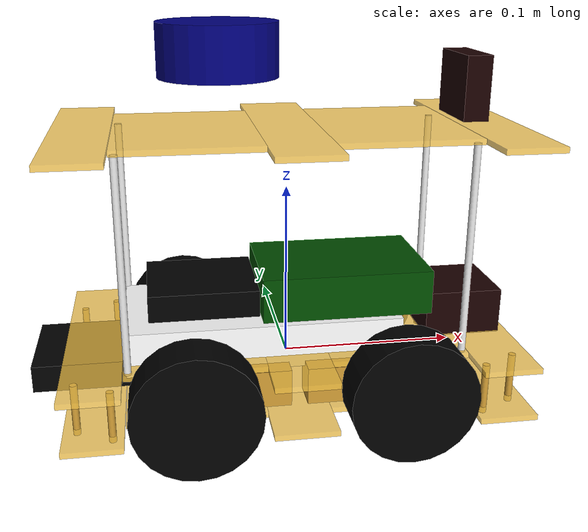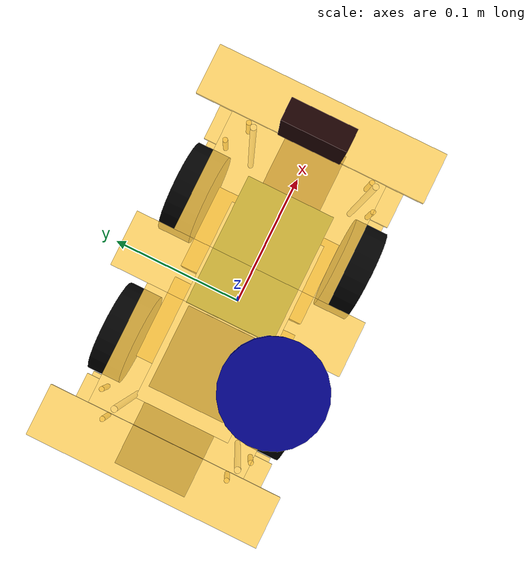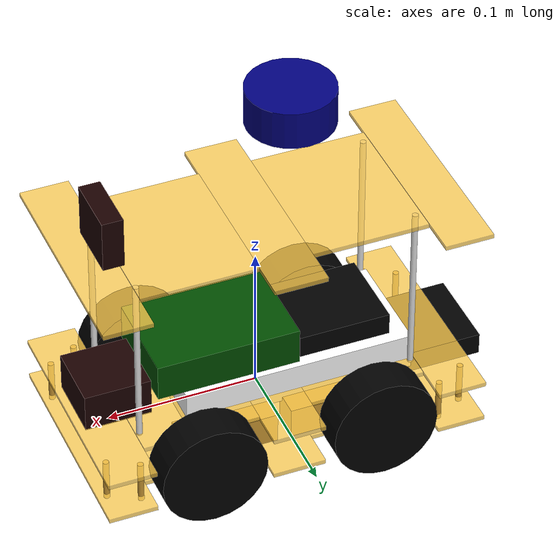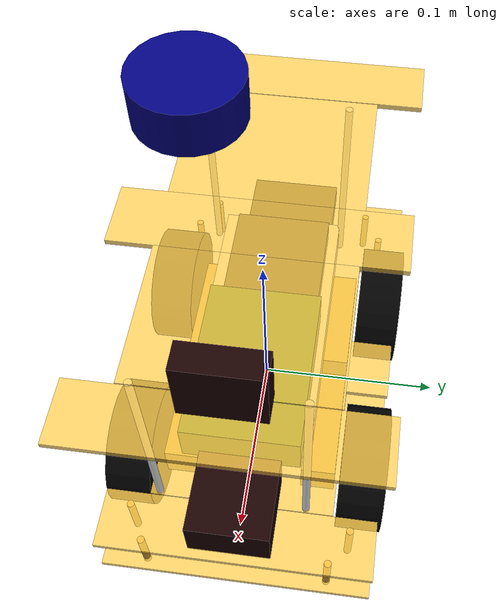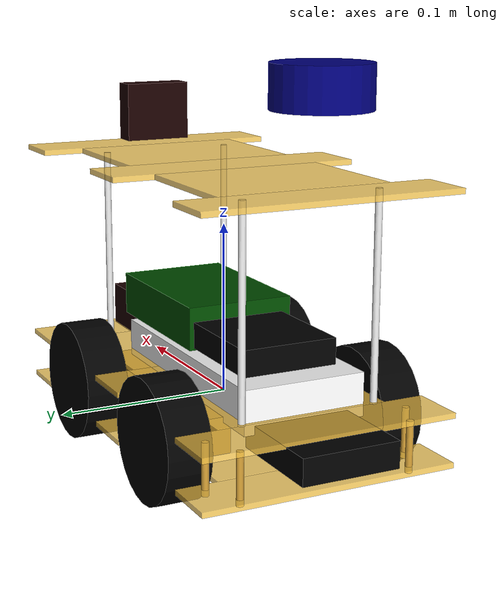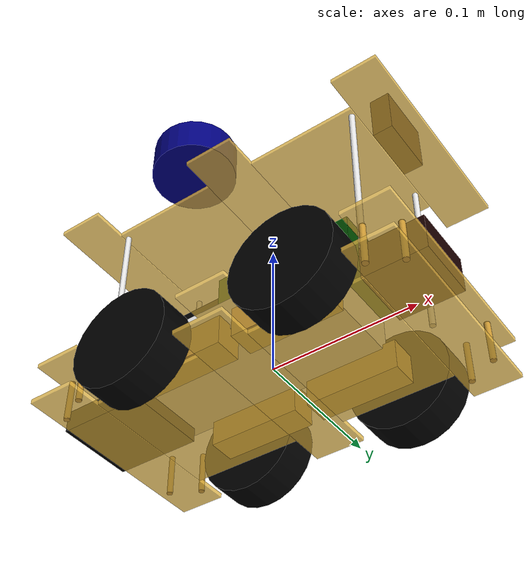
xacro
<?xml version="1.0"?>
<robot xmlns:xacro="http://www.ros.org/wiki/xacro" name="robot">
    <xacro:include filename="robot_core.xacro" />
    <xacro:include filename="wheels.xacro" />
    <xacro:include filename="lidar.xacro" />
    <xacro:include filename="camera.xacro" />
    <xacro:include filename="others.xacro" />
    <xacro:include filename="gazebo.xacro" />
</robot>

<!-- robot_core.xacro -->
<robot xmlns:xacro="http://www.ros.org/wiki/xacro" name="robot">

    <xacro:include filename="inertial_macros.xacro" />

    <material name="NavyBlue">
        <color rgba="0.0 0.0 0.5 1.0" />
    </material>

    <material name="WoodYellow">
        <color rgba="1.0 0.8 0.3 0.8" />
    </material>

    <material name="BlackWheel">
        <color rgba="0.0 0.0 0.0 1.0" />
    </material>

    <material name="Red">
        <color rgba="0.1 0.0 0.0 1.0" />
    </material>

    <material name="White">
        <color rgba="0.9 0.9 0.9 1.0" />
    </material>

    <material name="AbsWhite">
        <color rgba="1 1 1 1.0" />
    </material>

    <material name="Grey">
        <color rgba="0.7 0.7 0.7 1.0" />
    </material>

    <material name="DarkGold">
        <color rgba="0.8 0.6 0.2 1.0" />
    </material>
    <material name="DarkGreen">
        <color rgba="0.0 0.3 0.0 1.0" />
    </material>

    <link name="base_link"></link>
    <joint name="odom_to_base" type="fixed">
        <parent link="odom" />
        <child link="base_link" />
        <origin xyz="0 0 0" rpy="0 0 0" />
    </joint>

    <link name="odom" />

    <!-- |                                    Chassis                                      | -->

    <!-- Chassis Macro !-->
    <xacro:macro name="chassis" params="postfix">
        <link name="chassis_${postfix}">
            <visual>
                <geometry>
                    <box size="0.032 0.148 0.003" />
                </geometry>
                <origin xyz="-0.111 0 -0.015" rpy="0.0 0.0 0.0" />
                <material name="WoodYellow" />
            </visual>
            <visual>
                <geometry>
                    <box size="0.077 0.1 0.003" />
                </geometry>
                <origin xyz="-0.056 0 -0.015" rpy="0.0 0.0 0.0" />
                <material name="WoodYellow" />
            </visual>
            <visual>
                <geometry>
                    <box size="0.035 0.148 0.003" />
                </geometry>
                <origin xyz="0 0 -0.015" rpy="0.0 0.0 0.0" />
                <material name="WoodYellow" />
            </visual>
            <visual>
                <geometry>
                    <box size="0.077 0.1 0.003" />
                </geometry>
                <origin xyz="0.056 0 -0.015" rpy="0.0 0.0 0.0" />
                <material name="WoodYellow" />
            </visual>
            <visual>
                <geometry>
                    <box size="0.032 0.148 0.003" />
                </geometry>
                <origin xyz="0.111 0 -0.015" rpy="0.0 0.0 0.0" />
                <material name="WoodYellow" />
            </visual>

            <collision>
                <geometry>
                    <box size="0.032 0.148 0.003" />
                </geometry>
                <origin xyz="-0.111 0 -0.015" rpy="0.0 0.0 0.0" />
            </collision>

            <collision>
                <geometry>
                    <box size="0.077 0.1 0.003" />
                </geometry>
                <origin xyz="-0.056 0 -0.015" rpy="0.0 0.0 0.0" />
            </collision>

            <collision>
                <geometry>
                    <box size="0.035 0.148 0.003" />
                </geometry>
                <origin xyz="0 0 0.02" rpy="0.0 0.0 0.0" />
            </collision>

            <collision>
                <geometry>
                    <box size="0.077 0.1 0.003" />
                </geometry>
                <origin xyz="0.056 0 -0.015" rpy="0.0 0.0 0.0" />
            </collision>

            <collision>
                <geometry>
                    <box size="0.032 0.148 0.003" />
                </geometry>
                <origin xyz="0.111 0 -0.015" rpy="0.0 0.0 0.0" />
            </collision>

            <xacro:inertial_box mass="0.064" x="0.25" y="0.148" z="0.003">
                <origin xyz="0 0 0.04" rpy="0 0 0" />
            </xacro:inertial_box>
        </link>
    </xacro:macro>

    <!-- Chassis bottom !-->
    <xacro:chassis postfix="bottom" />
    <!-- Chassis mid !-->
    <xacro:chassis postfix="mid" />
    <!-- Chassis top !-->
    <xacro:chassis postfix="top" />

    <!-- Chassis bottom !-->
    <joint name="chassis_bottom_joint" type="fixed">
        <parent link="base_link" />
        <child link="chassis_bottom" />
        <origin xyz="0 0 0" />
    </joint>

    <!-- Chassis mid !-->
    <joint name="chassis_mid_joint" type="fixed">
        <parent link="base_link" />
        <child link="chassis_mid" />
        <origin xyz="0.0 0.0 0.028" />
    </joint>

    <!-- Chassis top !-->
    <joint name="chassis_top_joint" type="fixed">
        <parent link="base_link" />
        <child link="chassis_top" />
        <origin xyz="0.00 0.00 0.148" />
    </joint>

</robot>

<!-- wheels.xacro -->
<robot xmlns:xacro="http://www.ros.org/wiki/xacro" name="robot">
    <!-- |                                     Wheels                                      | -->

    <!-- Left Front Wheel Joint!-->
    <joint name="left_front_wheel_joint" type="continuous">
        <parent link="base_link" />
        <child link="left_front_wheel" />
        <origin xyz="0.0575 0.0640 0" rpy="${-pi/2} 0.0 0.0" />
        <axis xyz="0 0 1" />
    </joint>

    <!-- Left Front Wheel !-->
    <link name="left_front_wheel">
        <visual>
            <geometry>
                <cylinder radius="0.035" length="0.025" />
            </geometry>
            <origin xyz="0.0 0.0 0.0" rpy="0 0 0" />
            <material name="BlackWheel" />
        </visual>
        <collision>
            <geometry>
                <sphere radius="0.0325" />
            </geometry>
        </collision>
        <xacro:inertial_cylinder mass="0.027" length="0.025" radius="0.035">
            <origin xyz="0.0 0.0 0.0" rpy="0 0 0" />
        </xacro:inertial_cylinder>
    </link>

    <!-- Right Front Wheel Joint!-->
    <joint name="right_front_wheel_joint" type="continuous">
        <parent link="base_link" />
        <child link="right_front_wheel" />
        <origin xyz="0.0575 -0.0640 0" rpy="${pi/2} 0.0 0.0" />
        <axis xyz="0 0 -1" />
    </joint>

    <!-- Right Front Wheel !-->
    <link name="right_front_wheel">
        <visual>
            <geometry>
                <cylinder radius="0.035" length="0.025" />
            </geometry>
            <origin xyz="0.0 0.0 0.0" rpy="0 0 0" />
            <material name="BlackWheel" />
        </visual>
        <collision>
            <geometry>
                <sphere radius="0.0325" />
            </geometry>
        </collision>
        <xacro:inertial_cylinder mass="0.027" length="0.025" radius="0.035">
            <origin xyz="0.0 0.0 0.0" rpy="0 0 0" />
        </xacro:inertial_cylinder>
    </link>

    <!-- Left Rear Wheel Joint!-->
    <joint name="left_rear_wheel_joint" type="continuous">
        <parent link="base_link" />
        <child link="left_rear_wheel" />
        <origin xyz="-0.0575 0.0640 0" rpy="-${pi/2} 0.0 0.0" />
        <axis xyz="0 0 1" />
    </joint>

    <!-- Left Rear Wheel !-->
    <link name="left_rear_wheel">
        <visual>
            <geometry>
                <cylinder radius="0.035" length="0.025" />
            </geometry>
            <origin xyz="0.0 0.0 0.0" rpy="0 0 0" />
            <material name="BlackWheel" />
        </visual>
        <collision>
            <geometry>
                <sphere radius="0.0325" />
            </geometry>
        </collision>
        <xacro:inertial_cylinder mass="0.027" length="0.025" radius="0.035">
            <origin xyz="0.0 0.0 0.0" rpy="0 0 0" />
        </xacro:inertial_cylinder>
    </link>

    <!-- Right Rear Wheel Joint!-->
    <joint name="right_rear_wheel_joint" type="continuous">
        <parent link="base_link" />
        <child link="right_rear_wheel" />
        <origin xyz="-0.0575 -0.0640 0" rpy="${pi/2} 0.0 0.0" />
        <axis xyz="0 0 -1" />
    </joint>

    <!-- Right Rear Wheel !-->
    <link name="right_rear_wheel">
        <visual>
            <geometry>
                <cylinder radius="0.035" length="0.025" />
            </geometry>
            <origin xyz="0.0 0.0 0.0" rpy="0 0 0" />
            <material name="BlackWheel" />
        </visual>
        <collision>
            <geometry>
                <sphere radius="0.0325" />
            </geometry>
        </collision>
        <xacro:inertial_cylinder mass="0.027" length="0.025" radius="0.035">
            <origin xyz="0.0 0.0 0.0" rpy="0 0 0" />
        </xacro:inertial_cylinder>
    </link>

</robot>

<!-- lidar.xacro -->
<robot xmlns:xacro="http://www.ros.org/wiki/xacro" name="robot">

    <!-- |                                    Lidar                                        | -->
    <!-- Lidar !-->
    <link name="lidar">
        <visual>
            <geometry>
                <cylinder radius="0.0295" length="0.026" />
            </geometry>
            <origin xyz="0.0 0.0 0.0" rpy="0.0 0.0 0.0" />
            <material name="NavyBlue" />
        </visual>
        <collision>
            <geometry>
                <cylinder radius="0.0295" length="0.026" />
            </geometry>
        </collision>
        <xacro:inertial_cylinder mass="0.148" length="0.0295" radius="0.026">
            <origin xyz="0 0 0" rpy="0 0 0" />
        </xacro:inertial_cylinder>
    </link>

    <!-- Body & Lidar Joint !-->
    <joint name="lidar_joint" type="fixed">
        <parent link="base_link" />
        <child link="lidar" />
        <origin xyz="-0.04 -0.04 0.18" rpy="0.0 0.0 0.0" />
    </joint>

    <gazebo reference="lidar">
        <sensor type="gpu_lidar" name="lidar">
            <pose>0 0 0 0 0 0</pose>
            <visualize>true</visualize>
            <update_rate>10</update_rate>
            <lidar>
                <scan>
                    <horizontal>
                        <samples>360</samples>
                        <min_angle>-3.14159</min_angle>
                        <max_angle>3.14159</max_angle>
                    </horizontal>
                </scan>
                <range>
                    <min>0.3</min>
                    <max>12</max>
                </range>
            </lidar>
            <topic>scan</topic>
            <gz_frame_id>lidar</gz_frame_id>
        </sensor>
    </gazebo>

</robot>

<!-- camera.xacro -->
<robot xmlns:xacro="http://www.ros.org/wiki/xacro" name="robot">

    <!-- |                                   Camera                                        | -->
    <!-- Camera !-->
    <link name="camera">
        <visual>
            <geometry>
                <box size="0.014 0.04 0.035" />
            </geometry>
            <material name="Red" />
        </visual>
        <collision>
            <geometry>
                <box size="0.014 0.04 0.035" />
            </geometry>
        </collision>
        <xacro:inertial_box mass="0.012" x="0.014" y="0.04" z="0.035">
            <origin xyz="0 0 0" rpy="0 0 0" />
        </xacro:inertial_box>
    </link>

    <!-- Body & Camera Joint !-->
    <joint name="camera_joint" type="fixed">
        <parent link="base_link" />
        <child link="camera" />
        <origin xyz="0.1 0 0.155" rpy="0 0 0" />
    </joint>

    <gazebo reference="camera">
        <sensor name="camera" type="camera">
            <pose> 0 0 0 0 0 0 </pose>
            <visualize>true</visualize>
            <update_rate>10</update_rate>
            <camera>
                <camera_info_topic>camera/camera_info</camera_info_topic>
                <horizontal_fov>1.089</horizontal_fov>
                <image>
                    <format>R8G8B8</format>
                    <width>640</width>
                    <height>480</height>
                </image>
                <clip>
                    <near>0.05</near>
                    <far>8.0</far>
                </clip>
            </camera>
            <topic>camera/image_raw</topic>
            <gz_frame_id>camera</gz_frame_id>
        </sensor>
    </gazebo>
</robot>

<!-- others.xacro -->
<robot xmlns:xacro="http://www.ros.org/wiki/xacro" name="robot">

    <xacro:include filename="inertial_macros.xacro" />

    <!-- |                                   Motors                                        | -->
    <!-- Motor -->
    <xacro:macro name="motor" params="prefix">
        <link name="${prefix}_motor">
            <visual>
                <geometry>
                    <box size="0.064 0.019 0.021" />
                </geometry>
                <origin xyz="0.0 0.0 0.0" rpy="0.0 0.0 0.0" />
                <material name="DarkGold" />
            </visual>
            <collision>
                <geometry>
                    <box size="0.064 0.019 0.021" />
                </geometry>
            </collision>
        </link>
    </xacro:macro>

    <!-- Left Front Motor !-->
    <xacro:motor prefix="left_front" />
    <!-- Left Rear Motor !-->
    <xacro:motor prefix="left_rear" />
    <!-- Right Front Motor !-->
    <xacro:motor prefix="right_front" />
    <!-- Right Rear Motor !-->
    <xacro:motor prefix="right_rear" />

    <!-- Left Front Motor Joint!-->
    <joint name="left_front_motor_joint" type="fixed">
        <parent link="base_link" />
        <child link="left_front_motor" />
        <origin xyz="0.0365 0.0390 0" rpy="0.0 0.0 0.0" />
        <xacro:inertial_box mass="0.025" x="0.0365" y="0.0390" z="0">
            <origin xyz="0 0 0" rpy="0 0 0" />
        </xacro:inertial_box>
    </joint>

    <!-- Left Rear Motor Joint!-->
    <joint name="left_rear_motor_joint" type="fixed">
        <parent link="base_link" />
        <child link="left_rear_motor" />
        <origin xyz="-0.0365 0.039 0" rpy="0 0 0" />
        <xacro:inertial_box mass="0.025" x="-0.0365" y="0.0390" z="0">
            <origin xyz="0 0 0" rpy="0 0 0" />
        </xacro:inertial_box>
    </joint>

    <!-- Right Front Motor Joint!-->
    <joint name="right_front_motor_joint" type="fixed">
        <parent link="base_link" />
        <child link="right_front_motor" />
        <origin xyz="0.0365 -0.039 0" rpy="0 0 0" />
        <xacro:inertial_box mass="0.025" x="0.0365" y="-0.0390" z="0">
            <origin xyz="0 0 0" rpy="0 0 0" />
        </xacro:inertial_box>
    </joint>

    <!-- Right Rear Motor Joint!-->
    <joint name="right_rear_motor_joint" type="fixed">
        <parent link="base_link" />
        <child link="right_rear_motor" />
        <origin xyz="-0.0365 -0.039 0" rpy="0 0 0" />
        <xacro:inertial_box mass="0.025" x="-0.0365" y="-0.0390" z="0">
            <origin xyz="0 0 0" rpy="0 0 0" />
        </xacro:inertial_box>
    </joint>

    <!-- |                                  Battery                                        | -->
    <!-- Battery -->
    <xacro:macro name="battery" params="prefix">
        <link name="battery_${prefix}">
            <visual>
                <geometry>
                    <box size="0.061 0.056 0.015" />
                </geometry>
                <origin xyz="0.0 0.0 0.0" rpy="0.0 0.0 0.0" />
                <material name="BlackWheel" />
            </visual>
            <collision>
                <geometry>
                    <box size="0.061 0.056 0.015" />
                </geometry>
            </collision>
            <xacro:inertial_box mass="0.094" x="0.061" y="0.056" z="0.015">
                <origin xyz="0 0 0" rpy="0 0 0" />
            </xacro:inertial_box>
        </link>
    </xacro:macro>

    <xacro:battery prefix="mid" />

    <xacro:battery prefix="bottom" />

    <!-- Battery Mid Joint!-->
    <joint name="battery_mid_joint" type="fixed">
        <parent link="base_link" />
        <child link="battery_mid" />
        <origin xyz="-0.0495 0.0 0.042" rpy="0.0 0.0 0.0" />
    </joint>

    <!-- Battery Bottom Joint!-->
    <joint name="battery_bottom_joint" type="fixed">
        <parent link="base_link" />
        <child link="battery_bottom" />
        <origin xyz="-0.1135 0.0 0.005" rpy="0.0 0.0 0.0" />
    </joint>

    <!-- |                                  PowerBank                                      | -->
    <!-- PowerBank -->
    <link name="powerbank">
        <visual>
            <geometry>
                <box size="0.153 0.072 0.025" />
            </geometry>
            <origin xyz="0.0 0.0 0.0" rpy="0.0 0.0 0.0" />
            <material name="AbsWhite" />
        </visual>
        <collision>
            <geometry>
                <box size="0.153 0.072 0.025" />
            </geometry>
        </collision>
        <xacro:inertial_box mass="0.455" x="0.153" y="0.072" z="0.025">
            <origin xyz="0 0 0" rpy="0 0 0" />
        </xacro:inertial_box>
    </link>
    <!-- Base-powerbank joint-->
    <joint name="base_powerbank" type="fixed">
        <parent link="base_link" />
        <child link="powerbank" />
        <origin xyz="-0.0165 -0.002 0.02" rpy="0.0 0.0 0.0" />
    </joint>

    <!-- |                               Motor Driver                                      | -->
    <!-- Motor Driver -->
    <link name="motor_driver">
        <visual>
            <geometry>
                <box size="0.044 0.044 0.026" />
            </geometry>
            <origin xyz="0.0 0.0 0.0" rpy="0.0 0.0 0.0" />
            <material name="Red" />
        </visual>
        <collision>
            <geometry>
                <box size="0.044 0.044 0.026" />
            </geometry>
        </collision>
        <xacro:inertial_box mass="0.024" x="0.044" y="0.044" z="0.026">
            <origin xyz="0 0 0" rpy="0 0 0" />
        </xacro:inertial_box>
    </link>

    <!-- Motor Driver Joint-->
    <joint name="motor_driver_joint" type="fixed">
        <parent link="base_link" />
        <child link="motor_driver" />
        <origin xyz="0.10 -0.002 0.027" rpy="0.0 0.0 0.0" />
    </joint>

    <!-- |                                  Raspberry                                      | -->
    <!-- Raspberry -->
    <link name="raspberry">
        <visual>
            <geometry>
                <box size="0.095 0.064 0.025" />
            </geometry>
            <origin xyz="0.0 0.0 0.0" rpy="0.0 0.0 0.0" />
            <material name="DarkGreen" />
        </visual>
        <collision>
            <geometry>
                <box size="0.095 0.064 0.025" />
            </geometry>
        </collision>
        <xacro:inertial_box mass="0.140" x="0.095" y="0.064" z="0.025">
            <origin xyz="0 0 0" rpy="0 0 0" />
        </xacro:inertial_box>
    </link>

    <!-- Base-raspberry joint-->
    <joint name="base_raspberry" type="fixed">
        <parent link="base_link" />
        <child link="raspberry" />
        <origin xyz="0.0297 -0.002 0.0452" rpy="0.0 0.0 0.0" />
    </joint>

    <!-- |                               Small Cylinder                                    | -->
    <!-- Small_cylinder Macro !-->
    <xacro:macro name="small_cylinder" params="prefix">
        <link name="base_mid_${prefix}">
            <visual>
                <geometry>
                    <cylinder radius="0.002" length="0.029" />
                </geometry>
                <origin xyz="0.0 0.0 0.0" rpy="0.0 0.0 0.0" />
                <material name="DarkGold" />
            </visual>
            <collision>
                <geometry>
                    <cylinder radius="0.002" length="0.029" />
                </geometry>
            </collision>
            <xacro:inertial_cylinder mass="0.001" length="0.029" radius="0.002">
                <origin xyz="0 0 0" rpy="0 0 0" />
            </xacro:inertial_cylinder>
        </link>
    </xacro:macro>

    <!-- Cylinder base-mid left front!-->
    <xacro:small_cylinder prefix="left_front" />

    <!-- Cylinder base-mid left front2!-->
    <xacro:small_cylinder prefix="left_front_2" />

    <!-- Cylinder base-mid right front!-->
    <xacro:small_cylinder prefix="right_front" />

    <!-- Cylinder base-mid right front2!-->
    <xacro:small_cylinder prefix="right_front_2" />

    <!-- Cylinder base-mid left back!-->
    <xacro:small_cylinder prefix="left_back" />

    <!-- Cylinder base-mid left back2!-->
    <xacro:small_cylinder prefix="left_back_2" />

    <!-- Cylinder base-mid right back!-->
    <xacro:small_cylinder prefix="right_back" />

    <!-- Cylinder base-mid right back2!-->
    <xacro:small_cylinder prefix="right_back_2" />

    <!-- Cylinder base-mid left front Joint!-->
    <joint name="base_mid_left_joint" type="fixed">
        <parent link="base_link" />
        <child link="base_mid_left_front" />
        <origin xyz="0.12 0.05 -0.0025" rpy="0 0.0 0" />
    </joint>

    <!-- Cylinder base-mid left front2 Joint!-->
    <joint name="base_mid_left_joint_2" type="fixed">
        <parent link="base_link" />
        <child link="base_mid_left_front_2" />
        <origin xyz="0.101 0.06 -0.0025" rpy="0 0.0 0" />
    </joint>

    <!-- Cylinder base-mid right front Joint!-->
    <joint name="base_mid_right_joint" type="fixed">
        <parent link="base_link" />
        <child link="base_mid_right_front" />
        <origin xyz="0.12 -0.05 -0.0025" rpy="0 0.0 0" />
    </joint>

    <!-- Cylinder base-mid right front2 Joint!-->
    <joint name="base_mid_right_joint_2" type="fixed">
        <parent link="base_link" />
        <child link="base_mid_right_front_2" />
        <origin xyz="0.101 -0.06 -0.0025" rpy="0 0.0 0" />
    </joint>

    <!-- Cylinder base-mid left back Joint!-->
    <joint name="base_mid_left_back_joint" type="fixed">
        <parent link="base_link" />
        <child link="base_mid_left_back" />
        <origin xyz="-0.12 0.05 -0.0025" rpy="0 0.0 0" />
    </joint>

    <!-- Cylinder base-mid left back2 Joint!-->
    <joint name="base_mid_left_back_joint_2" type="fixed">
        <parent link="base_link" />
        <child link="base_mid_left_back_2" />
        <origin xyz="-0.101 0.06 -0.0025" rpy="0 0.0 0" />
    </joint>

    <!-- Cylinder base-mid right back Joint!-->
    <joint name="base_mid_right_back_joint" type="fixed">
        <parent link="base_link" />
        <child link="base_mid_right_back" />
        <origin xyz="-0.12 -0.05 -0.0025" rpy="0 0.0 0" />
    </joint>

    <!-- Cylinder base-mid right back2 Joint!-->
    <joint name="base_mid_right_back_joint_2" type="fixed">
        <parent link="base_link" />
        <child link="base_mid_right_back_2" />
        <origin xyz="-0.101 -0.06 -0.0025" rpy="0 0.0 0" />
    </joint>

    <!-- |                                 Big Cylinder                                    | -->
    <!-- Big cylinder Macro !-->
    <xacro:macro name="big_cylinder" params="prefix">
        <link name="big_cylinder_${prefix}">
            <visual>
                <geometry>
                    <cylinder radius="0.002" length="0.118" />
                </geometry>
                <origin xyz="0.0 0.0 0.0" rpy="0.0 0.0 0.0" />
                <material name="White" />
            </visual>
            <collision>
                <geometry>
                    <cylinder radius="0.002" length="0.118" />
                </geometry>
            </collision>
            <xacro:inertial_cylinder mass="0.038" length="0.188" radius="0.002">
                <origin xyz="0 0 0" rpy="0 0 0" />
            </xacro:inertial_cylinder>
        </link>
    </xacro:macro>

    <!-- Big Cylinder left front!-->
    <xacro:big_cylinder prefix="left_front" />
    <!-- Big Cylinder left back!-->
    <xacro:big_cylinder prefix="left_back" />
    <!-- Big Cylinder right front!-->
    <xacro:big_cylinder prefix="right_front" />
    <!-- Big Cylinder right back!-->
    <xacro:big_cylinder prefix="right_back" />

    <!-- Big Cylinder left front Joint!-->
    <joint name="big_cylinder_left_front_joint" type="fixed">
        <parent link="base_link" />
        <child link="big_cylinder_left_front" />
        <origin xyz="0.092 0.035 0.0725" rpy="0 0.0 0" />
    </joint>

    <!-- Big Cylinder left back Joint!-->
    <joint name="big_cylinder_left_back_joint" type="fixed">
        <parent link="base_link" />
        <child link="big_cylinder_left_back" />
        <origin xyz="-0.092 0.035 0.0725" rpy="0 0.0 0" />
    </joint>

    <!-- Big Cylinder right front Joint!-->
    <joint name="big_cylinder_right_front_joint" type="fixed">
        <parent link="base_link" />
        <child link="big_cylinder_right_front" />
        <origin xyz="0.092 -0.045 0.0725" rpy="0 0.0 0" />
    </joint>

    <!-- Big Cylinder right back Joint!-->
    <joint name="big_cylinder_right_back_joint" type="fixed">
        <parent link="base_link" />
        <child link="big_cylinder_right_back" />
        <origin xyz="-0.092 -0.045 0.0725" rpy="0 0.0 0" />
    </joint>

</robot>
